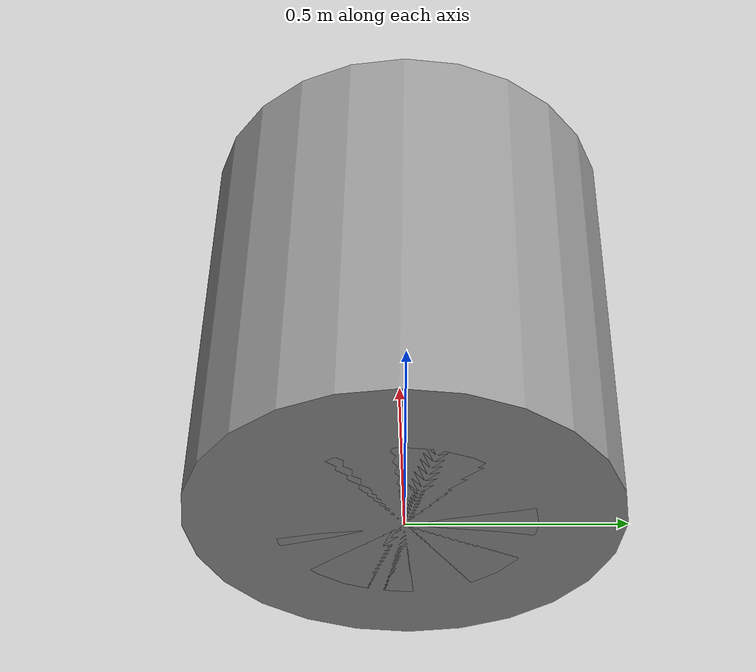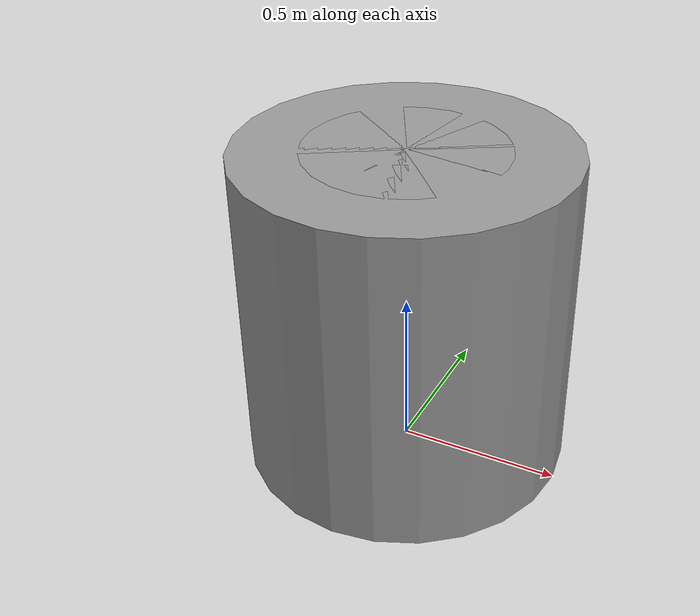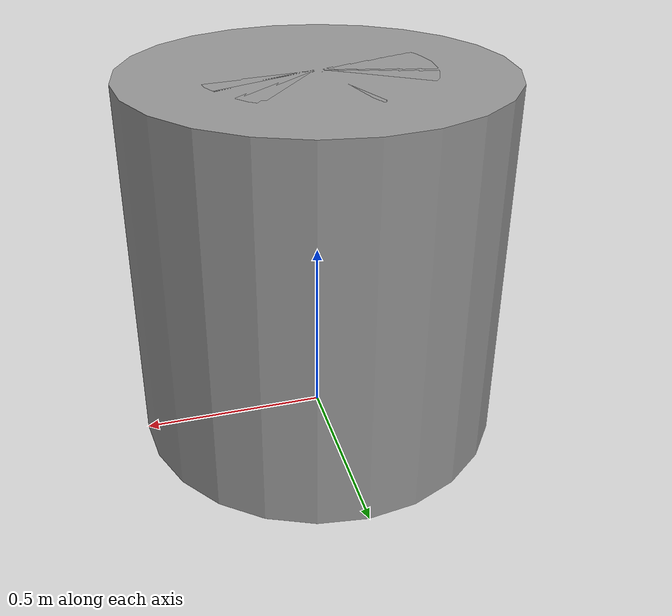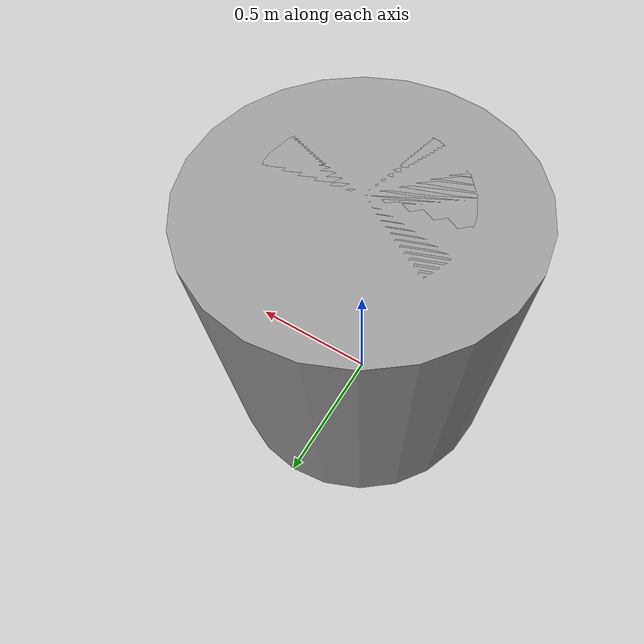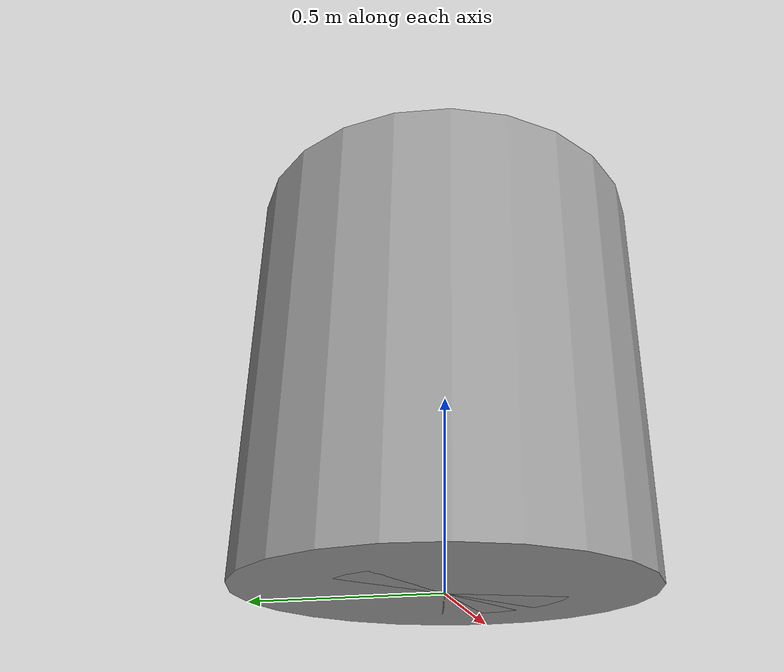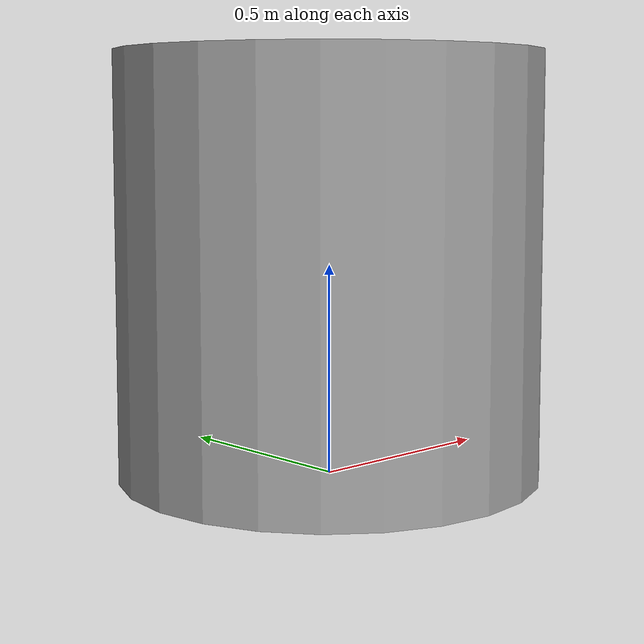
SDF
<?xml version="1.0" ?>
<sdf version="1.6">

    <!-- A testing model that includes the Velodyne sensor model -->
    <model name='pos_control_model'>
      <link name='link_0'>
        <inertial>
          <mass>1</mass>
          <inertia>
            <ixx>0.145833</ixx>
            <ixy>0</ixy>
            <ixz>0</ixz>
            <iyy>0.145833</iyy>
            <iyz>0</iyz>
            <izz>0.125</izz>
          </inertia>
          <pose frame=''>0 0 0 0 -0 0</pose>
        </inertial>
        <pose frame=''>0 0 0.5 0 -0 0</pose>
        <gravity>1</gravity>
        <self_collide>0</self_collide>
        <kinematic>0</kinematic>
        <enable_wind>0</enable_wind>
        <visual name='visual'>
          <pose frame=''>0 0 0 0 -0 0</pose>
          <geometry>
            <cylinder>
              <radius>0.5</radius>
              <length>1</length>
            </cylinder>
          </geometry>
          <material>
            <lighting>1</lighting>
            <script>
              <uri>file://media/materials/scripts/gazebo.material</uri>
              <name>Gazebo/Grey</name>
            </script>
            <shader type='vertex'>
              <normal_map>__default__</normal_map>
            </shader>
            <ambient>0.3 0.3 0.3 1</ambient>
            <diffuse>0.7 0.7 0.7 1</diffuse>
            <specular>0.01 0.01 0.01 1</specular>
            <emissive>0 0 0 1</emissive>
          </material>
          <transparency>0</transparency>
          <cast_shadows>1</cast_shadows>
        </visual>
        <collision name='collision'>
          <laser_retro>0</laser_retro>
          <max_contacts>10</max_contacts>
          <pose frame=''>0 0 0 0 -0 0</pose>
          <geometry>
            <cylinder>
              <radius>0.5</radius>
              <length>1</length>
            </cylinder>
          </geometry>
          <surface>
            <friction>
              <ode>
                <mu>1</mu>
                <mu2>1</mu2>
                <fdir1>0 0 0</fdir1>
                <slip1>0</slip1>
                <slip2>0</slip2>
              </ode>
              <torsional>
                <coefficient>1</coefficient>
                <patch_radius>0</patch_radius>
                <surface_radius>0</surface_radius>
                <use_patch_radius>1</use_patch_radius>
                <ode>
                  <slip>0</slip>
                </ode>
              </torsional>
            </friction>
            <bounce>
              <restitution_coefficient>0</restitution_coefficient>
              <threshold>1e+06</threshold>
            </bounce>
            <contact>
              <collide_without_contact>0</collide_without_contact>
              <collide_without_contact_bitmask>1</collide_without_contact_bitmask>
              <collide_bitmask>1</collide_bitmask>
              <ode>
                <soft_cfm>0</soft_cfm>
                <soft_erp>0.2</soft_erp>
                <kp>1e+13</kp>
                <kd>1</kd>
                <max_vel>0.01</max_vel>
                <min_depth>0</min_depth>
              </ode>
              <bullet>
                <split_impulse>1</split_impulse>
                <split_impulse_penetration_threshold>-0.01</split_impulse_penetration_threshold>
                <soft_cfm>0</soft_cfm>
                <soft_erp>0.2</soft_erp>
                <kp>1e+13</kp>
                <kd>1</kd>
              </bullet>
            </contact>
          </surface>
        </collision>
      </link>
      <link name='link_1'>
        <inertial>
          <mass>1</mass>
          <inertia>
            <ixx>0.145833</ixx>
            <ixy>0</ixy>
            <ixz>0</ixz>
            <iyy>0.145833</iyy>
            <iyz>0</iyz>
            <izz>0.125</izz>
          </inertia>
          <pose frame=''>0 0 0 0 -0 0</pose>
        </inertial>
        <pose frame=''>0 0 0.5 0 -0 0</pose>
        <gravity>1</gravity>
        <self_collide>0</self_collide>
        <kinematic>0</kinematic>
        <enable_wind>0</enable_wind>
        <visual name='visual'>
          <pose frame=''>0 0 0 0 -0 0</pose>
          <geometry>
            <cylinder>
              <radius>0.3</radius>
              <length>1</length>
            </cylinder>
          </geometry>
          <material>
            <lighting>1</lighting>
            <script>
              <uri>file://media/materials/scripts/gazebo.material</uri>
              <name>Gazebo/Grey</name>
            </script>
            <shader type='vertex'>
              <normal_map>__default__</normal_map>
            </shader>
            <ambient>0.3 0.3 0.3 1</ambient>
            <diffuse>0.7 0.7 0.7 1</diffuse>
            <specular>0.01 0.01 0.01 1</specular>
            <emissive>0 0 0 1</emissive>
          </material>
          <transparency>0</transparency>
          <cast_shadows>1</cast_shadows>
        </visual>
        <collision name='collision'>
          <laser_retro>0</laser_retro>
          <max_contacts>10</max_contacts>
          <pose frame=''>0 0 0 0 -0 0</pose>
          <geometry>
            <cylinder>
              <radius>0.3</radius>
              <length>1</length>
            </cylinder>
          </geometry>
          <surface>
            <friction>
              <ode>
                <mu>1</mu>
                <mu2>1</mu2>
                <fdir1>0 0 0</fdir1>
                <slip1>0</slip1>
                <slip2>0</slip2>
              </ode>
              <torsional>
                <coefficient>1</coefficient>
                <patch_radius>0</patch_radius>
                <surface_radius>0</surface_radius>
                <use_patch_radius>1</use_patch_radius>
                <ode>
                  <slip>0</slip>
                </ode>
              </torsional>
            </friction>
            <bounce>
              <restitution_coefficient>0</restitution_coefficient>
              <threshold>1e+06</threshold>
            </bounce>
            <contact>
              <collide_without_contact>0</collide_without_contact>
              <collide_without_contact_bitmask>1</collide_without_contact_bitmask>
              <collide_bitmask>1</collide_bitmask>
              <ode>
                <soft_cfm>0</soft_cfm>
                <soft_erp>0.2</soft_erp>
                <kp>1e+13</kp>
                <kd>1</kd>
                <max_vel>0.01</max_vel>
                <min_depth>0</min_depth>
              </ode>
              <bullet>
                <split_impulse>1</split_impulse>
                <split_impulse_penetration_threshold>-0.01</split_impulse_penetration_threshold>
                <soft_cfm>0</soft_cfm>
                <soft_erp>0.2</soft_erp>
                <kp>1e+13</kp>
                <kd>1</kd>
              </bullet>
            </contact>
          </surface>
        </collision>
      </link>
      <joint name='joint_0' type='prismatic'>
        <parent>link_0</parent>
        <child>link_1</child>
        <pose frame=''>0 0 0 0 -0 0</pose>
        <axis>
          <xyz>0 0 1</xyz>
          <use_parent_model_frame>0</use_parent_model_frame>
          <limit>
            <lower>-1.0</lower>
            <upper>1.0</upper>
            <effort>1e5</effort>
            <velocity>1e2</velocity>
          </limit>
          <dynamics>
            <spring_reference>0</spring_reference>
            <spring_stiffness>0</spring_stiffness>
            <damping>0</damping>
          </dynamics>
        </axis>
        <physics>
          <ode>
            <limit>
              <cfm>0</cfm>
              <erp>0.2</erp>
            </limit>
            <suspension>
              <cfm>0</cfm>
              <erp>0.2</erp>
            </suspension>
          </ode>
        </physics>
      </joint>

    </model>

</sdf>
